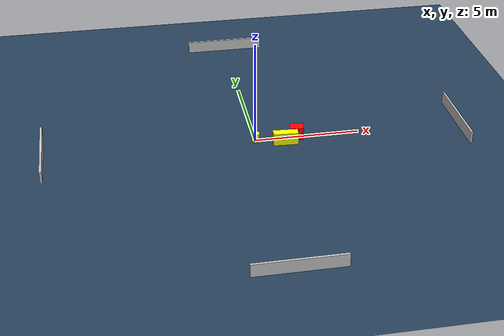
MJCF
<?xml version="1.0" ?>
<mujoco model="generated_environment">
  <option timestep="0.01" integrator="RK4" cone="elliptic"/>
  <default>
    <geom density="1"/>
  </default>
  <asset>
    <texture builtin="gradient" height="3072" name="skybox" rgb1="0.3 0.5 0.7" rgb2="0 0 0" type="skybox" width="512"/>
    <texture builtin="checker" height="300" name="groundplane" rgb1="0.2 0.3 0.4" rgb2="0.1 0.2 0.3" type="2d" width="300"/>
    <material name="groundplane" reflectance="0.2" texrepeat="5 5" texture="groundplane"/>
  </asset>
  <worldbody>
    <light dir="0 0 -1" directional="true" pos="0 0 1.5"/>
    <geom condim="3" friction="0.5 0.005 0.001" material="groundplane" name="floor" pos="0 0 0" size="0 0 0.05" type="plane"/>
    <body name="walls">
      <geom name="wall_1" condim="4" pos="-10.0 0.0 0.3" rgba="0.800000011920929 0.800000011920929 0.800000011920929 1.0" size="0.05 2.0 0.3" type="box"/>
      <geom name="wall_2" condim="4" pos="10.0 0.0 0.3" rgba="0.800000011920929 0.800000011920929 0.800000011920929 1.0" size="0.05 2.0 0.3" type="box"/>
      <geom name="wall_3" condim="4" pos="0.0 -10.0 0.3" rgba="0.800000011920929 0.800000011920929 0.800000011920929 1.0" size="2.0 0.05 0.3" type="box"/>
      <geom name="wall_4" condim="4" pos="0.0 10.0 0.3" rgba="0.800000011920929 0.800000011920929 0.800000011920929 1.0" size="2.0 0.05 0.3" type="box"/>
    </body>
    <body name="robot">
      <joint name="joint_x" type="slide" pos="0 0 0" axis="1 0 0"/>
      <joint name="joint_y" type="slide" pos="0 0 0" axis="0 1 0"/>
      <geom name="robot" type="cylinder" pos="0.0 0.0 0.2" size="0.2 0.2 0.0" mass="5.0" friction="1.0 0.005 0.0001" condim="4" rgba="1.0 1.0 0.0 1.0"/>
    </body>
    <body name="obstacle_1_movable">
      <geom name="obstacle_1_movable" condim="4" pos="1.3611449540394613 -0.4541017089461548 0.3" euler="0 0 267.0058353752833" friction="0.0 0.005 0.001" rgba="1.0 1.0 0.0 1.0" size="0.20578520951523457 0.5955984003086271 0.3" type="box" mass="0.1"/>
      <joint type="free"/>
    </body>
    <body name="obstacle_2_static">
      <geom name="obstacle_2_static" condim="4" pos="1.978108646780889 -0.0087838247068979 0.3" euler="0 0 348.8610482490365" friction="0.0 0.005 0.001" rgba="1.0 0.0 0.0 1.0" size="0.33312296573576666 0.24904479864687154 0.3" type="box"/>
    </body>
  </worldbody>
  <actuator>
    <motor name="actuator_x" joint="joint_x" gear="1" ctrlrange="-1 1"/>
    <motor name="actuator_y" joint="joint_y" gear="1" ctrlrange="-1 1"/>
  </actuator>
</mujoco>
